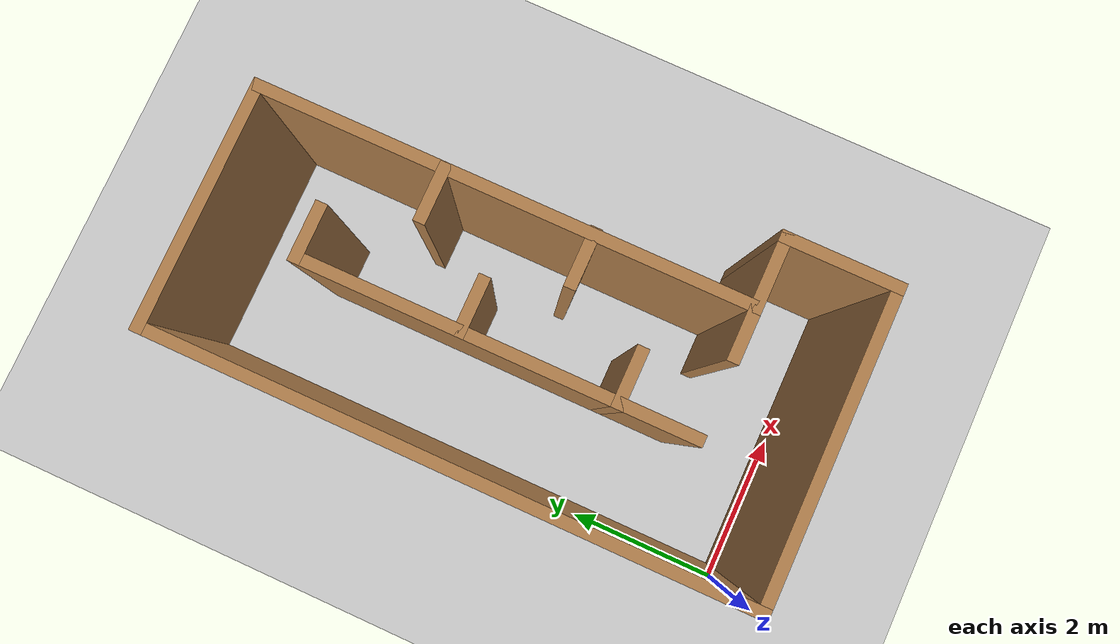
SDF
<sdf version="1.6">
 <world name="default">
  <light name="sun" type="directional">
   <pose>0 0 10 0 -0 0</pose>
   <diffuse>0.8 0.8 0.8 1</diffuse>
   <specular>0.1 0.1 0.1 1</specular>
   <attenuation>
    <range>1000</range>
    <constant>0.9</constant>
    <linear>0.01</linear>
    <quadratic>0.001</quadratic>
   </attenuation>
   <direction>-0.5 0.5 -1</direction>
  </light>
  <model name="ground_plane">
   <static>1</static>
   <link name="link">
    <collision name="collision">
     <geometry><plane><normal>0 0 1</normal><size>100 100</size></plane></geometry>
     <surface><friction><ode><mu>100</mu><mu2>50</mu2></ode></friction></surface>
    </collision>
    <visual name="visual">
     <cast_shadows>0</cast_shadows>
     <geometry><plane><normal>0 0 1</normal><size>100 100</size></plane></geometry>
     <material>
      <script><uri>file://media/materials/scripts/gazebo.material</uri><name>Gazebo/Grey</name></script>
     </material>
    </visual>
   </link>
  </model>
  <gravity>0 0 -9.8</gravity>
  <magnetic_field>6e-06 2.3e-05 -4.2e-05</magnetic_field>
  <atmosphere type="adiabatic"/>
  <physics name="default_physics" default="0" type="ode">
   <max_step_size>0.001</max_step_size>
   <real_time_factor>1</real_time_factor>
   <real_time_update_rate>1000</real_time_update_rate>
  </physics>
  <scene><ambient>0.4 0.4 0.4 1</ambient><background>0.7 0.7 0.7 1</background><shadows>1</shadows></scene>
  <spherical_coordinates>
   <surface_model>EARTH_WGS84</surface_model>
   <latitude_deg>0</latitude_deg>
   <longitude_deg>0</longitude_deg>
   <elevation>0</elevation>
   <heading_deg>0</heading_deg>
  </spherical_coordinates>
  <model name="Untitled">
   <pose>2 3.75 0 0 -0 0</pose>
   <link name="Wall_20">
    <collision name="Wall_20_Collision">
     <geometry><box><size>7.5 0.15 2.5</size></box></geometry>
     <pose>0 0 1.25 0 -0 0</pose>
    </collision>
    <visual name="Wall_20_Visual">
     <pose>0 0 1.25 0 -0 0</pose>
     <geometry><box><size>7.5 0.15 2.5</size></box></geometry>
     <material>
      <script><uri>file://media/materials/scripts/gazebo.material</uri><name>Gazebo/Wood</name></script>
      <ambient>1 1 1 1</ambient>
     </material>
    </visual>
    <pose>-1.925 -0.0528 0 0 0 -1.5708</pose>
   </link>
   <link name="Wall_21">
    <collision name="Wall_21_Collision">
     <geometry><box><size>4 0.15 2.5</size></box></geometry>
     <pose>0 0 1.25 0 -0 0</pose>
    </collision>
    <visual name="Wall_21_Visual">
     <pose>0 0 1.25 0 -0 0</pose>
     <geometry><box><size>4 0.15 2.5</size></box></geometry>
     <material>
      <script><uri>file://media/materials/scripts/gazebo.material</uri><name>Gazebo/Wood</name></script>
      <ambient>1 1 1 1</ambient>
     </material>
    </visual>
    <pose>1e-06 -3.7278 0 0 -0 0</pose>
   </link>
   <link name="Wall_22">
    <collision name="Wall_22_Collision">
     <geometry><box><size>1.5 0.15 2.5</size></box></geometry>
     <pose>0 0 1.25 0 -0 0</pose>
    </collision>
    <visual name="Wall_22_Visual">
     <pose>0 0 1.25 0 -0 0</pose>
     <geometry><box><size>1.5 0.15 2.5</size></box></geometry>
     <material>
      <script><uri>file://media/materials/scripts/gazebo.material</uri><name>Gazebo/Wood</name></script>
      <ambient>1 1 1 1</ambient>
     </material>
    </visual>
    <pose>1.925 -3.0528 0 0 -0 1.5708</pose>
   </link>
   <link name="Wall_23">
    <collision name="Wall_23_Collision">
     <geometry><box><size>1 0.15 2.5</size></box></geometry>
     <pose>0 0 1.25 0 -0 0</pose>
    </collision>
    <visual name="Wall_23_Visual">
     <pose>0 0 1.25 0 -0 0</pose>
     <geometry><box><size>1 0.15 2.5</size></box></geometry>
     <material>
      <script><uri>file://media/materials/scripts/gazebo.material</uri><name>Gazebo/Wood</name></script>
      <ambient>1 1 1 1</ambient>
     </material>
    </visual>
    <pose>1.5 -2.3778 0 0 -0 3.14159</pose>
   </link>
   <link name="Wall_24">
    <collision name="Wall_24_Collision">
     <geometry><box><size>6.25572 0.15 2.5</size></box></geometry>
     <pose>0 0 1.25 0 -0 0</pose>
    </collision>
    <visual name="Wall_24_Visual">
     <pose>0 0 1.25 0 -0 0</pose>
     <geometry><box><size>6.25572 0.15 2.5</size></box></geometry>
     <material>
      <script><uri>file://media/materials/scripts/gazebo.material</uri><name>Gazebo/Wood</name></script>
      <ambient>1 1 1 1</ambient>
     </material>
    </visual>
    <pose>1.075 0.674942 0 0 -0 1.5708</pose>
   </link>
   <link name="Wall_25">
    <collision name="Wall_25_Collision">
     <geometry><box><size>3.15 0.15 2.5</size></box></geometry>
     <pose>0 0 1.25 0 -0 0</pose>
    </collision>
    <visual name="Wall_25_Visual">
     <pose>0 0 1.25 0 -0 0</pose>
     <geometry><box><size>3.15 0.15 2.5</size></box></geometry>
     <material>
      <script><uri>file://media/materials/scripts/gazebo.material</uri><name>Gazebo/Wood</name></script>
      <ambient>1 1 1 1</ambient>
     </material>
    </visual>
    <pose>-0.425002 3.72768 0 0 -0 3.14159</pose>
   </link>
   <link name="Wall_29">
    <collision name="Wall_29_Collision">
     <geometry><box><size>5 0.15 2.5</size></box></geometry>
     <pose>0 0 1.25 0 -0 0</pose>
    </collision>
    <visual name="Wall_29_Visual">
     <pose>0 0 1.25 0 -0 0</pose>
     <geometry><box><size>5 0.15 2.5</size></box></geometry>
     <material>
      <script><uri>file://media/materials/scripts/gazebo.material</uri><name>Gazebo/Wood</name></script>
      <ambient>1 1 1 1</ambient>
     </material>
    </visual>
    <pose>-0.513034 0.060219 0 0 -0 1.5708</pose>
   </link>
   <link name="Wall_32">
    <collision name="Wall_32_Collision">
     <geometry><box><size>0.75 0.15 2.5</size></box></geometry>
     <pose>0 0 1.25 0 -0 0</pose>
    </collision>
    <visual name="Wall_32_Visual">
     <pose>0 0 1.25 0 -0 0</pose>
     <geometry><box><size>0.75 0.15 2.5</size></box></geometry>
     <material>
      <script><uri>file://media/materials/scripts/gazebo.material</uri><name>Gazebo/Wood</name></script>
      <ambient>1 1 1 1</ambient>
     </material>
    </visual>
    <pose>0.775001 -2.3778 0 0 -0 3.14159</pose>
   </link>
   <link name="Wall_35">
    <collision name="Wall_35_Collision">
     <geometry><box><size>0.75 0.15 2.5</size></box></geometry>
     <pose>0 0 1.25 0 -0 0</pose>
    </collision>
    <visual name="Wall_35_Visual">
     <pose>0 0 1.25 0 -0 0</pose>
     <geometry><box><size>0.75 0.15 2.5</size></box></geometry>
     <material>
      <script><uri>file://media/materials/scripts/gazebo.material</uri><name>Gazebo/Wood</name></script>
      <ambient>1 1 1 1</ambient>
     </material>
    </visual>
    <pose>-0.213034 -1.42565 0 0 -0 0</pose>
   </link>
   <link name="Wall_39">
    <collision name="Wall_39_Collision">
     <geometry><box><size>0.75 0.15 2.5</size></box></geometry>
     <pose>0 0 1.25 0 -0 0</pose>
    </collision>
    <visual name="Wall_39_Visual">
     <pose>0 0 1.25 0 -0 0</pose>
     <geometry><box><size>0.75 0.15 2.5</size></box></geometry>
     <material>
      <script><uri>file://media/materials/scripts/gazebo.material</uri><name>Gazebo/Wood</name></script>
      <ambient>1 1 1 1</ambient>
     </material>
    </visual>
    <pose>0.786966 -0.416955 0 0 -0 3.14159</pose>
   </link>
   <link name="Wall_42">
    <collision name="Wall_42_Collision">
     <geometry><box><size>0.75 0.15 2.5</size></box></geometry>
     <pose>0 0 1.25 0 -0 0</pose>
    </collision>
    <visual name="Wall_42_Visual">
     <pose>0 0 1.25 0 -0 0</pose>
     <geometry><box><size>0.75 0.15 2.5</size></box></geometry>
     <material>
      <script><uri>file://media/materials/scripts/gazebo.material</uri><name>Gazebo/Wood</name></script>
      <ambient>1 1 1 1</ambient>
     </material>
    </visual>
    <pose>-0.213034 0.487393 0 0 -0 0</pose>
   </link>
   <link name="Wall_45">
    <collision name="Wall_45_Collision">
     <geometry><box><size>0.75 0.15 2.5</size></box></geometry>
     <pose>0 0 1.25 0 -0 0</pose>
    </collision>
    <visual name="Wall_45_Visual">
     <pose>0 0 1.25 0 -0 0</pose>
     <geometry><box><size>0.75 0.15 2.5</size></box></geometry>
     <material>
      <script><uri>file://media/materials/scripts/gazebo.material</uri><name>Gazebo/Wood</name></script>
      <ambient>1 1 1 1</ambient>
     </material>
    </visual>
    <pose>0.769575 1.40913 0 0 -0 3.14159</pose>
   </link>
   <link name="Wall_48">
    <collision name="Wall_48_Collision">
     <geometry><box><size>0.75 0.15 2.5</size></box></geometry>
     <pose>0 0 1.25 0 -0 0</pose>
    </collision>
    <visual name="Wall_48_Visual">
     <pose>0 0 1.25 0 -0 0</pose>
     <geometry><box><size>0.75 0.15 2.5</size></box></geometry>
     <material>
      <script><uri>file://media/materials/scripts/gazebo.material</uri><name>Gazebo/Wood</name></script>
      <ambient>1 1 1 1</ambient>
     </material>
    </visual>
    <pose>-0.213034 2.48522 0 0 -0 0</pose>
   </link>
   <static>1</static>
  </model>
 </world>
</sdf>
